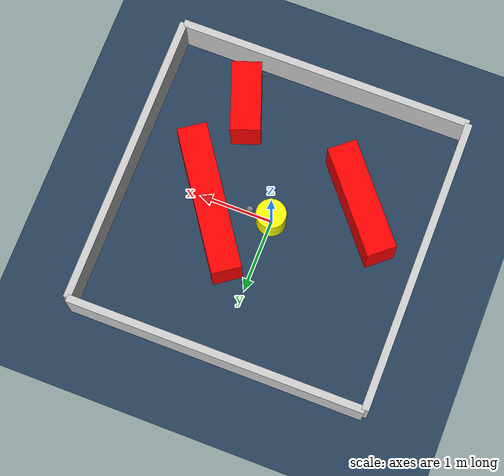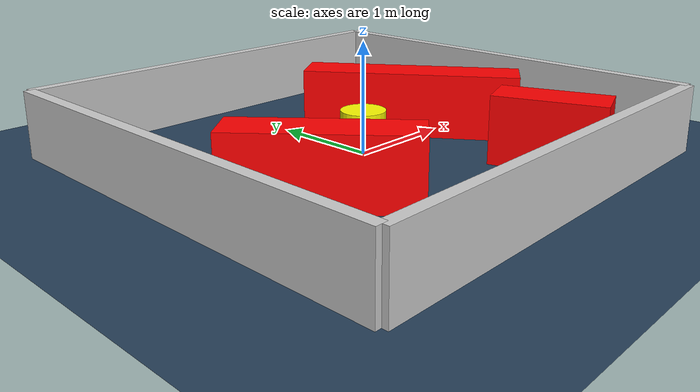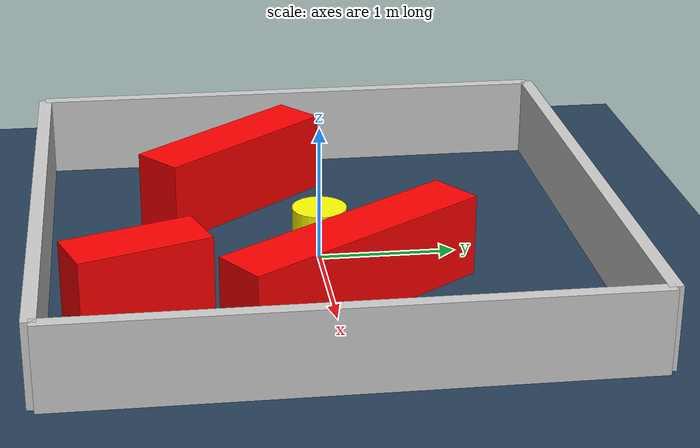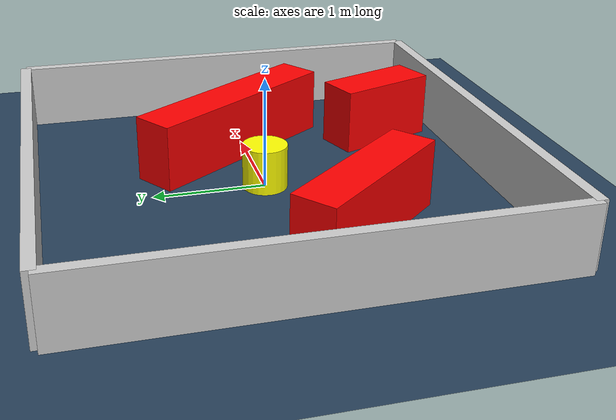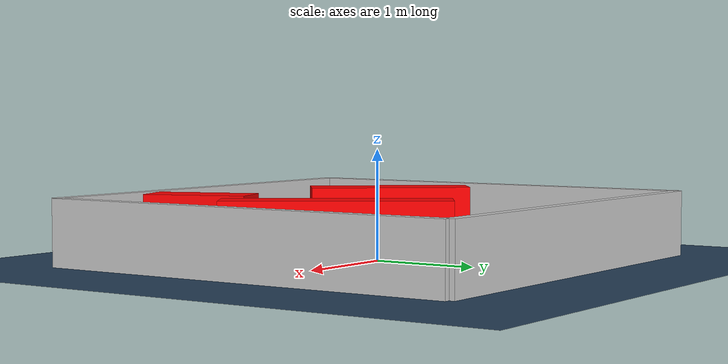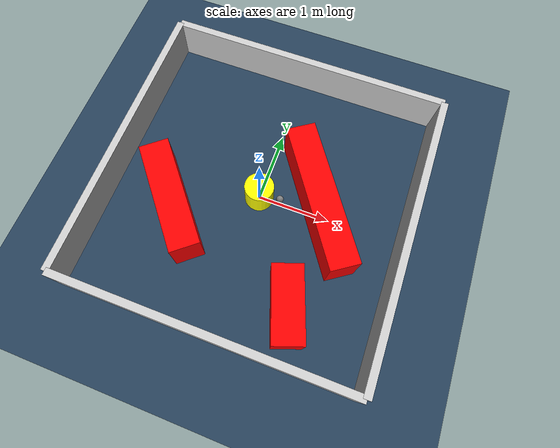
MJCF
<?xml version="1.0" ?>
<mujoco model="generated_environment">
  <option timestep="0.01" integrator="RK4" cone="elliptic"/>
  <default>
    <geom density="1"/>
  </default>
  <asset>
    <texture builtin="gradient" height="3072" rgb1="0.3 0.5 0.7" rgb2="0 0 0" type="skybox" width="512"/>
    <texture builtin="checker" height="300" mark="edge" markrgb="0.8 0.8 0.8" name="groundplane" rgb1="0.2 0.3 0.4" rgb2="0.1 0.2 0.3" type="2d" width="300"/>
    <material name="groundplane" reflectance="0.2" texrepeat="5 5" texture="groundplane" texuniform="true"/>
    <material name="robot" rgba="0.0 1.0 0.0 1"/>
  </asset>
  <worldbody>
    <light dir="0 0 -1" directional="true" pos="0 0 1.5"/>
    <geom condim="4" friction="1.0 0.005 0.001" material="groundplane" name="floor" size="0 0 0.05" type="plane"/>
    <body name="walls">
      <geom name="wall_1" condim="4" pos="-2.0 0.0 0.3" rgba="0.800000011920929 0.800000011920929 0.800000011920929 1.0" size="0.05 2.0 0.3" type="box"/>
      <geom name="wall_2" condim="4" pos="2.0 0.0 0.3" rgba="0.800000011920929 0.800000011920929 0.800000011920929 1.0" size="0.05 2.0 0.3" type="box"/>
      <geom name="wall_3" condim="4" pos="0.0 -2.0 0.3" rgba="0.800000011920929 0.800000011920929 0.800000011920929 1.0" size="2.0 0.05 0.3" type="box"/>
      <geom name="wall_4" condim="4" pos="0.0 2.0 0.3" rgba="0.800000011920929 0.800000011920929 0.800000011920929 1.0" size="2.0 0.05 0.3" type="box"/>
    </body>
    <body name="robot">
      <joint name="joint_x" type="slide" pos="0 0 0" axis="1 0 0"/>
      <joint name="joint_y" type="slide" pos="0 0 0" axis="0 1 0"/>
      <geom name="robot" type="sphere" pos="0.3 0.0 0.2" size="0.05" mass="5." friction="1.0 0.005 0.0001" condim="4" rgba="0.5 0.5 0.5 1.0"/>
      <site name="sensor_ball"/>
    </body>
    <body name="obstacle_movable_1">
      <geom name="obstacle_movable_1" condim="4" pos="0.0 0.0 0.2" euler="0 0 0.0" friction="1.0 0.005 0.001" rgba="1.0 1.0 0.0 1.0" size="0.2 0.2 0.0" type="cylinder" mass="0.1"/>
      <joint type="free"/>
    </body>
    <body name="obstacle_2_static">
      <geom name="obstacle_2_static" condim="4" pos="0.8079784685438234 0.13032654215901363 0.3" euler="0 0 304.46217781080134" friction="1.0 0.005 0.001" rgba="1 0 0 1" size="0.9982870161326858 0.2 0.3" type="box"/>
    </body>
    <body name="obstacle_3_static">
      <geom name="obstacle_3_static" condim="4" pos="-1.031626784114172 -0.5637149618311297 0.3" euler="0 0 129.7746805745386" friction="1.0 0.005 0.001" rgba="1 0 0 1" size="0.761061792313829 0.2 0.3" type="box"/>
    </body>
    <body name="obstacle_4_static">
      <geom name="obstacle_4_static" condim="4" pos="0.8592803228494938 -1.3333950857252255 0.3" euler="0 0 109.64839647582531" friction="1.0 0.005 0.001" rgba="1 0 0 1" size="0.4767732764840801 0.2 0.3" type="box"/>
    </body>
  </worldbody>
  <actuator>
    <motor name="actuator_x" joint="joint_x" gear="1" ctrlrange="-1 1"/>
    <motor name="actuator_y" joint="joint_y" gear="1" ctrlrange="-1 1"/>
  </actuator>
</mujoco>
